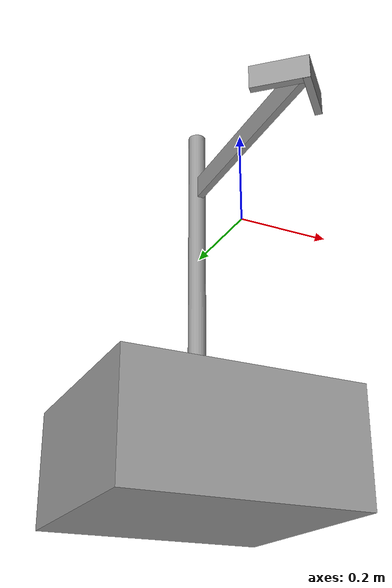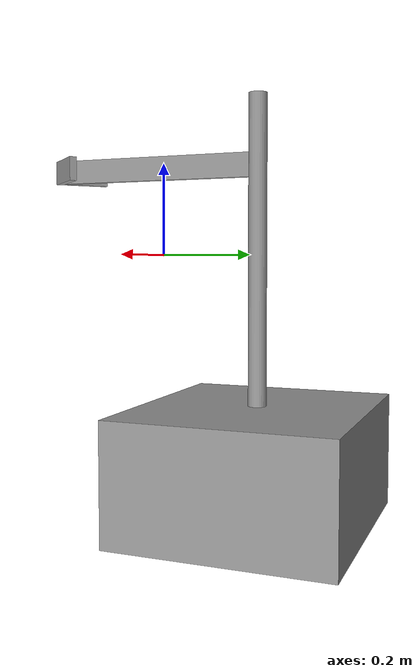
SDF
<?xml version='1.0'?>
<sdf version='1.7'>
  <model name='swing_arm'>
    <link name='link_0'>
      <inertial>
        <mass>128.263</mass>
        <inertia>
          <ixx>3.10709</ixx>
          <ixy>0</ixy>
          <ixz>0</ixz>
          <iyy>3.66381</iyy>
          <iyz>0</iyz>
          <izz>5.35391</izz>
        </inertia>
        <pose>0 0 0 0 -0 0</pose>
      </inertial>
      <pose>0.003514 0.218498 -0.450165 0 -0 0</pose>
      <gravity>1</gravity>
      <self_collide>0</self_collide>
      <kinematic>0</kinematic>
      <enable_wind>0</enable_wind>
      <visual name='visual'>
        <pose>0 0 0 0 -0 0</pose>
        <geometry>
          <box>
            <size>0.525827 0.473717 0.257459</size>
          </box>
        </geometry>
        <material>
          <lighting>1</lighting>
          <script>
            <uri>file://media/materials/scripts/gazebo.material</uri>
            <name>Gazebo/Grey</name>
          </script>
          <shader type='pixel'>
            <normal_map>__default__</normal_map>
          </shader>
          <emissive>0 0 0 1</emissive>
        </material>
        <transparency>0</transparency>
        <cast_shadows>1</cast_shadows>
      </visual>
      <collision name='collision'>
        <laser_retro>0</laser_retro>
        <max_contacts>10</max_contacts>
        <pose>0 0 0 0 -0 0</pose>
        <geometry>
          <box>
            <size>0.525827 0.473717 0.257459</size>
          </box>
        </geometry>
        <surface>
          <friction>
            <ode>
              <mu>1</mu>
              <mu2>1</mu2>
              <fdir1>0 0 0</fdir1>
              <slip1>0</slip1>
              <slip2>0</slip2>
            </ode>
            <torsional>
              <coefficient>1</coefficient>
              <patch_radius>0</patch_radius>
              <surface_radius>0</surface_radius>
              <use_patch_radius>1</use_patch_radius>
              <ode>
                <slip>0</slip>
              </ode>
            </torsional>
          </friction>
          <bounce>
            <restitution_coefficient>0</restitution_coefficient>
            <threshold>1e+06</threshold>
          </bounce>
          <contact>
            <collide_without_contact>0</collide_without_contact>
            <collide_without_contact_bitmask>1</collide_without_contact_bitmask>
            <collide_bitmask>1</collide_bitmask>
            <ode>
              <soft_cfm>0</soft_cfm>
              <soft_erp>0.2</soft_erp>
              <kp>1e+13</kp>
              <kd>1</kd>
              <max_vel>0.01</max_vel>
              <min_depth>0</min_depth>
            </ode>
            <bullet>
              <split_impulse>1</split_impulse>
              <split_impulse_penetration_threshold>-0.01</split_impulse_penetration_threshold>
              <soft_cfm>0</soft_cfm>
              <soft_erp>0.2</soft_erp>
              <kp>1e+13</kp>
              <kd>1</kd>
            </bullet>
          </contact>
        </surface>
      </collision>
    </link>
    <link name='link_3'>
      <inertial>
        <mass>0.0010587</mass>
        <inertia>
          <ixx>3.82892e-05</ixx>
          <ixy>0</ixy>
          <ixz>0</ixz>
          <iyy>3.82892e-05</iyy>
          <iyz>0</iyz>
          <izz>2.07905e-07</izz>
        </inertia>
        <pose>0 0 0 0 -0 0</pose>
      </inertial>
      <pose>0.003514 0.218498 0.007508 0 -0 0</pose>
      <gravity>1</gravity>
      <self_collide>0</self_collide>
      <kinematic>0</kinematic>
      <enable_wind>0</enable_wind>
      <visual name='visual'>
        <pose>0 0 0 0 -0 0</pose>
        <geometry>
          <cylinder>
            <radius>0.0198182</radius>
            <length>0.657887</length>
          </cylinder>
        </geometry>
        <material>
          <lighting>1</lighting>
          <script>
            <uri>file://media/materials/scripts/gazebo.material</uri>
            <name>Gazebo/Grey</name>
          </script>
          <shader type='pixel'>
            <normal_map>__default__</normal_map>
          </shader>
          <emissive>0 0 0 1</emissive>
        </material>
        <transparency>0</transparency>
        <cast_shadows>1</cast_shadows>
      </visual>
      <collision name='collision'>
        <laser_retro>0</laser_retro>
        <max_contacts>10</max_contacts>
        <pose>0 0 0 0 -0 0</pose>
        <geometry>
          <cylinder>
            <radius>0.019818</radius>
            <length>0.657887</length>
          </cylinder>
        </geometry>
        <surface>
          <friction>
            <ode>
              <mu>1</mu>
              <mu2>1</mu2>
              <fdir1>0 0 0</fdir1>
              <slip1>0</slip1>
              <slip2>0</slip2>
            </ode>
            <torsional>
              <coefficient>1</coefficient>
              <patch_radius>0</patch_radius>
              <surface_radius>0</surface_radius>
              <use_patch_radius>1</use_patch_radius>
              <ode>
                <slip>0</slip>
              </ode>
            </torsional>
          </friction>
          <bounce>
            <restitution_coefficient>0</restitution_coefficient>
            <threshold>1e+06</threshold>
          </bounce>
          <contact>
            <collide_without_contact>0</collide_without_contact>
            <collide_without_contact_bitmask>1</collide_without_contact_bitmask>
            <collide_bitmask>1</collide_bitmask>
            <ode>
              <soft_cfm>0</soft_cfm>
              <soft_erp>0.2</soft_erp>
              <kp>1e+13</kp>
              <kd>1</kd>
              <max_vel>0.01</max_vel>
              <min_depth>0</min_depth>
            </ode>
            <bullet>
              <split_impulse>1</split_impulse>
              <split_impulse_penetration_threshold>-0.01</split_impulse_penetration_threshold>
              <soft_cfm>0</soft_cfm>
              <soft_erp>0.2</soft_erp>
              <kp>1e+13</kp>
              <kd>1</kd>
            </bullet>
          </contact>
        </surface>
      </collision>
    </link>
    <link name='link_5'>
      <inertial>
        <mass>0.00042337</mass>
        <inertia>
          <ixx>8.72e-06</ixx>
          <ixy>0</ixy>
          <ixz>0</ixz>
          <iyy>1e-07</iyy>
          <iyz>0</iyz>
          <izz>8.63e-06</izz>
        </inertia>
        <pose>0 0 0 0 -0 0</pose>
      </inertial>
      <pose>0.003514 -0.012612 0.189312 0 -0 0</pose>
      <gravity>1</gravity>
      <self_collide>0</self_collide>
      <kinematic>0</kinematic>
      <enable_wind>0</enable_wind>
      <visual name='visual'>
        <pose>0 0 0 0 -0 0</pose>
        <geometry>
          <box>
            <size>0.015167 0.494482 0.051646</size>
          </box>
        </geometry>
        <material>
          <lighting>1</lighting>
          <script>
            <uri>file://media/materials/scripts/gazebo.material</uri>
            <name>Gazebo/Grey</name>
          </script>
          <shader type='pixel'>
            <normal_map>__default__</normal_map>
          </shader>
          <emissive>0 0 0 1</emissive>
        </material>
        <transparency>0</transparency>
        <cast_shadows>1</cast_shadows>
      </visual>
      <collision name='collision'>
        <laser_retro>0</laser_retro>
        <max_contacts>10</max_contacts>
        <pose>0 0 0 0 -0 0</pose>
        <geometry>
          <box>
            <size>0.015167 0.494482 0.051646</size>
          </box>
        </geometry>
        <surface>
          <friction>
            <ode>
              <mu>1</mu>
              <mu2>1</mu2>
              <fdir1>0 0 0</fdir1>
              <slip1>0</slip1>
              <slip2>0</slip2>
            </ode>
            <torsional>
              <coefficient>1</coefficient>
              <patch_radius>0</patch_radius>
              <surface_radius>0</surface_radius>
              <use_patch_radius>1</use_patch_radius>
              <ode>
                <slip>0</slip>
              </ode>
            </torsional>
          </friction>
          <bounce>
            <restitution_coefficient>0</restitution_coefficient>
            <threshold>1e+06</threshold>
          </bounce>
          <contact>
            <collide_without_contact>0</collide_without_contact>
            <collide_without_contact_bitmask>1</collide_without_contact_bitmask>
            <collide_bitmask>1</collide_bitmask>
            <ode>
              <soft_cfm>0</soft_cfm>
              <soft_erp>0.2</soft_erp>
              <kp>1e+13</kp>
              <kd>1</kd>
              <max_vel>0.01</max_vel>
              <min_depth>0</min_depth>
            </ode>
            <bullet>
              <split_impulse>1</split_impulse>
              <split_impulse_penetration_threshold>-0.01</split_impulse_penetration_threshold>
              <soft_cfm>0</soft_cfm>
              <soft_erp>0.2</soft_erp>
              <kp>1e+13</kp>
              <kd>1</kd>
            </bullet>
          </contact>
        </surface>
      </collision>
    </link>
    <link name='link_5_clone'>
      <inertial>
        <mass>0.0001009</mass>
        <inertia>
          <ixx>1.4e-07</ixx>
          <ixy>0</ixy>
          <ixz>0</ixz>
          <iyy>2e-08</iyy>
          <iyz>0</iyz>
          <izz>1.2e-07</izz>
        </inertia>
        <pose>0 0 0 0 -0 0</pose>
      </inertial>
      <pose>0.039129 -0.222332 0.188929 -0 -0 -0.7676</pose>
      <gravity>1</gravity>
      <self_collide>0</self_collide>
      <kinematic>0</kinematic>
      <enable_wind>0</enable_wind>
      <visual name='visual'>
        <pose>0 0 0 0 -0 0</pose>
        <geometry>
          <box>
            <size>0.015167 0.117837 0.051646</size>
          </box>
        </geometry>
        <material>
          <lighting>1</lighting>
          <script>
            <uri>file://media/materials/scripts/gazebo.material</uri>
            <name>Gazebo/Grey</name>
          </script>
          <shader type='pixel'>
            <normal_map>__default__</normal_map>
          </shader>
          <emissive>0 0 0 1</emissive>
        </material>
        <transparency>0</transparency>
        <cast_shadows>1</cast_shadows>
      </visual>
      <collision name='collision'>
        <laser_retro>0</laser_retro>
        <max_contacts>10</max_contacts>
        <pose>0 0 0 0 -0 0</pose>
        <geometry>
          <box>
            <size>0.015167 0.117837 0.051646</size>
          </box>
        </geometry>
        <surface>
          <friction>
            <ode>
              <mu>1</mu>
              <mu2>1</mu2>
              <fdir1>0 0 0</fdir1>
              <slip1>0</slip1>
              <slip2>0</slip2>
            </ode>
            <torsional>
              <coefficient>1</coefficient>
              <patch_radius>0</patch_radius>
              <surface_radius>0</surface_radius>
              <use_patch_radius>1</use_patch_radius>
              <ode>
                <slip>0</slip>
              </ode>
            </torsional>
          </friction>
          <bounce>
            <restitution_coefficient>0</restitution_coefficient>
            <threshold>1e+06</threshold>
          </bounce>
          <contact>
            <collide_without_contact>0</collide_without_contact>
            <collide_without_contact_bitmask>1</collide_without_contact_bitmask>
            <collide_bitmask>1</collide_bitmask>
            <ode>
              <soft_cfm>0</soft_cfm>
              <soft_erp>0.2</soft_erp>
              <kp>1e+13</kp>
              <kd>1</kd>
              <max_vel>0.01</max_vel>
              <min_depth>0</min_depth>
            </ode>
            <bullet>
              <split_impulse>1</split_impulse>
              <split_impulse_penetration_threshold>-0.01</split_impulse_penetration_threshold>
              <soft_cfm>0</soft_cfm>
              <soft_erp>0.2</soft_erp>
              <kp>1e+13</kp>
              <kd>1</kd>
            </bullet>
          </contact>
        </surface>
      </collision>
    </link>
    <link name='link_5_clone_clone'>
      <inertial>
        <mass>0.0001009</mass>
        <inertia>
          <ixx>1.39181e-07</ixx>
          <ixy>0</ixy>
          <ixz>0</ixz>
          <iyy>2.43619e-08</iyy>
          <iyz>0</iyz>
          <izz>1.18688e-07</izz>
        </inertia>
        <pose>0 0 0 0 -0 0</pose>
      </inertial>
      <pose>-0.035357 -0.225032 0.189221 0 -0 0.835207</pose>
      <gravity>1</gravity>
      <self_collide>0</self_collide>
      <kinematic>0</kinematic>
      <enable_wind>0</enable_wind>
      <visual name='visual'>
        <pose>0 0 0 0 -0 0</pose>
        <geometry>
          <box>
            <size>0.015167 0.117837 0.051646</size>
          </box>
        </geometry>
        <material>
          <lighting>1</lighting>
          <script>
            <uri>file://media/materials/scripts/gazebo.material</uri>
            <name>Gazebo/Grey</name>
          </script>
          <shader type='pixel'>
            <normal_map>__default__</normal_map>
          </shader>
          <emissive>0 0 0 1</emissive>
        </material>
        <transparency>0</transparency>
        <cast_shadows>1</cast_shadows>
      </visual>
      <collision name='collision'>
        <laser_retro>0</laser_retro>
        <max_contacts>10</max_contacts>
        <pose>0 0 0 0 -0 0</pose>
        <geometry>
          <box>
            <size>0.015167 0.117837 0.051646</size>
          </box>
        </geometry>
        <surface>
          <friction>
            <ode>
              <mu>1</mu>
              <mu2>1</mu2>
              <fdir1>0 0 0</fdir1>
              <slip1>0</slip1>
              <slip2>0</slip2>
            </ode>
            <torsional>
              <coefficient>1</coefficient>
              <patch_radius>0</patch_radius>
              <surface_radius>0</surface_radius>
              <use_patch_radius>1</use_patch_radius>
              <ode>
                <slip>0</slip>
              </ode>
            </torsional>
          </friction>
          <bounce>
            <restitution_coefficient>0</restitution_coefficient>
            <threshold>1e+06</threshold>
          </bounce>
          <contact>
            <collide_without_contact>0</collide_without_contact>
            <collide_without_contact_bitmask>1</collide_without_contact_bitmask>
            <collide_bitmask>1</collide_bitmask>
            <ode>
              <soft_cfm>0</soft_cfm>
              <soft_erp>0.2</soft_erp>
              <kp>1e+13</kp>
              <kd>1</kd>
              <max_vel>0.01</max_vel>
              <min_depth>0</min_depth>
            </ode>
            <bullet>
              <split_impulse>1</split_impulse>
              <split_impulse_penetration_threshold>-0.01</split_impulse_penetration_threshold>
              <soft_cfm>0</soft_cfm>
              <soft_erp>0.2</soft_erp>
              <kp>1e+13</kp>
              <kd>1</kd>
            </bullet>
          </contact>
        </surface>
      </collision>
    </link>
    <joint name='link_0_JOINT_0' type='revolute'>
      <parent>link_0</parent>
      <child>link_3</child>
      <pose>0 0 0 0 -0 0</pose>
      <axis>
        <xyz>0 0 1</xyz>
        <limit>
          <lower>-1.79769e+308</lower>
          <upper>1.79769e+308</upper>
          <effort>-1</effort>
          <velocity>-1</velocity>
        </limit>
        <dynamics>
          <spring_reference>0</spring_reference>
          <spring_stiffness>0</spring_stiffness>
          <damping>0</damping>
          <friction>0.1</friction>
        </dynamics>
      </axis>
      <physics>
        <ode>
          <limit>
            <cfm>0</cfm>
            <erp>0.2</erp>
          </limit>
          <suspension>
            <cfm>0</cfm>
            <erp>0.2</erp>
          </suspension>
        </ode>
      </physics>
    </joint>
    <joint name='link_3_JOINT_1' type='fixed'>
      <parent>link_3</parent>
      <child>link_5</child>
      <pose>0 0 0 0 -0 0</pose>
      <physics>
        <ode>
          <limit>
            <cfm>0</cfm>
            <erp>0.2</erp>
          </limit>
          <suspension>
            <cfm>0</cfm>
            <erp>0.2</erp>
          </suspension>
        </ode>
      </physics>
    </joint>
    <joint name='link_5_JOINT_2' type='fixed'>
      <parent>link_5</parent>
      <child>link_5_clone</child>
      <pose>0 0 0 0 -0 0</pose>
      <physics>
        <ode>
          <limit>
            <cfm>0</cfm>
            <erp>0.2</erp>
          </limit>
          <suspension>
            <cfm>0</cfm>
            <erp>0.2</erp>
          </suspension>
        </ode>
      </physics>
    </joint>
    <joint name='link_5_JOINT_3' type='fixed'>
      <parent>link_5</parent>
      <child>link_5_clone_clone</child>
      <pose>0 0 0 0 -0 0</pose>
      <physics>
        <ode>
          <limit>
            <cfm>0</cfm>
            <erp>0.2</erp>
          </limit>
          <suspension>
            <cfm>0</cfm>
            <erp>0.2</erp>
          </suspension>
        </ode>
      </physics>
    </joint>
  <plugin name="gazebo_ros_joint_state_publisher" filename="libgazebo_ros_joint_state_publisher.so">
    <update_rate>100</update_rate>
    <joint_name>link_0_JOINT_0</joint_name>
  </plugin>

  <plugin name="gazebo_ros_joint_pose_trajectory" filename="libgazebo_ros_joint_pose_trajectory.so">
    <update_rate>100</update_rate>
  </plugin>
    <static>0</static>
    <allow_auto_disable>1</allow_auto_disable>
  </model>
</sdf>
